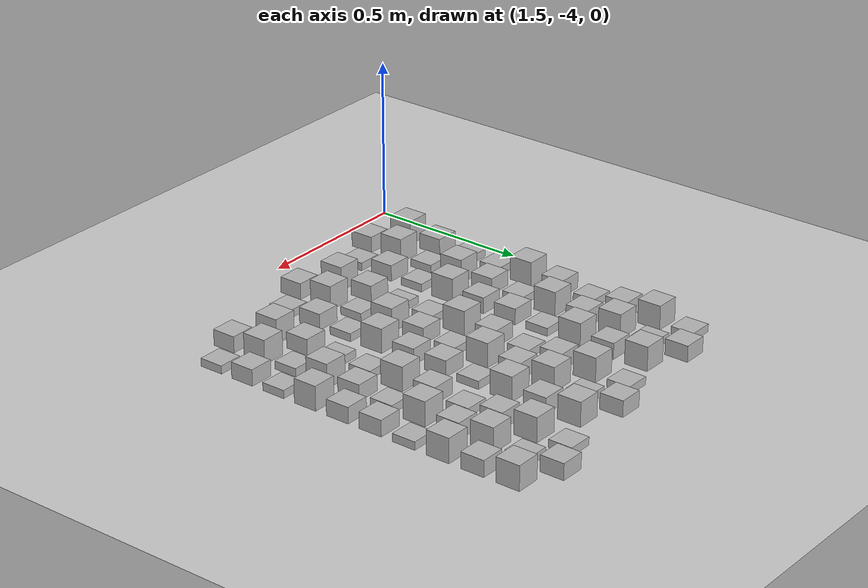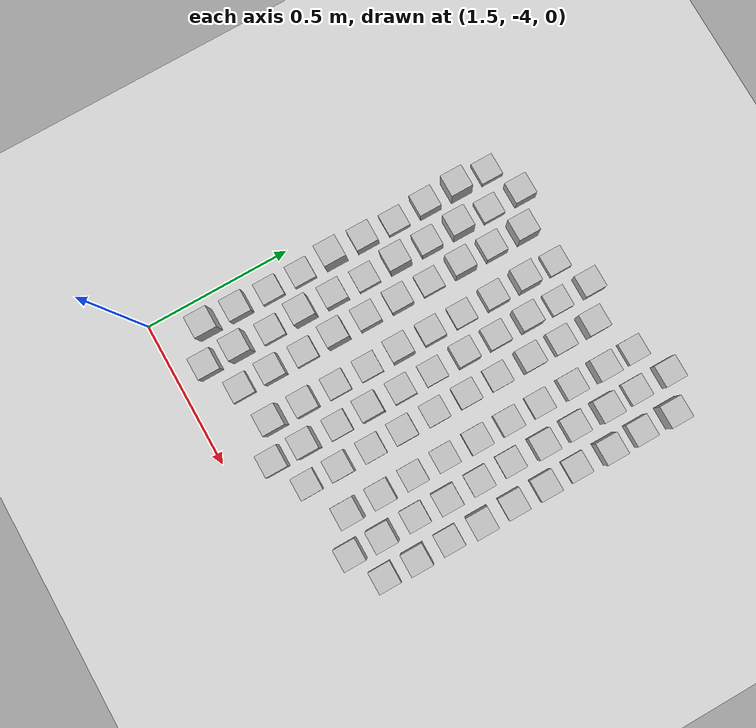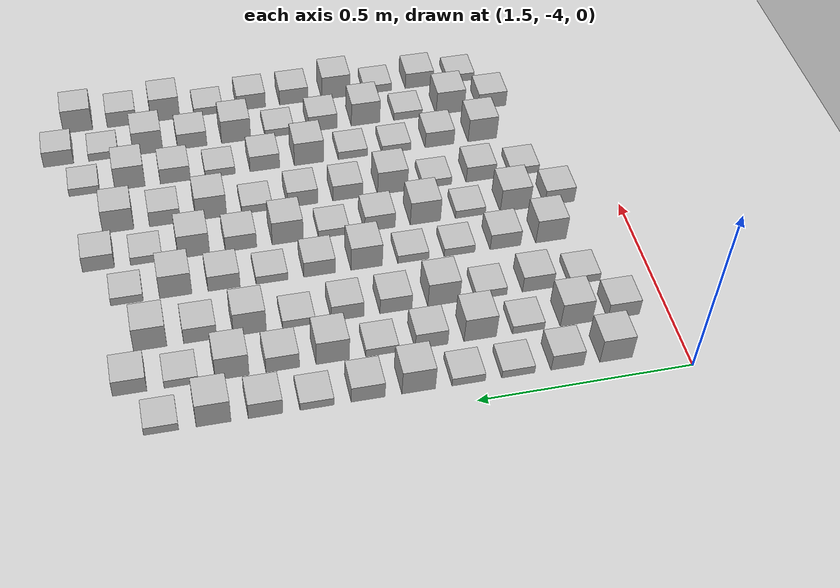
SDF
<sdf version="1.6">
 <world name="default">
  <light name="sun" type="directional">
   <pose>0 0 10 0 -0 0</pose>
   <diffuse>0.8 0.8 0.8 1</diffuse>
   <specular>0.1 0.1 0.1 1</specular>
   <attenuation>
    <range>1000</range>
    <constant>0.9</constant>
    <linear>0.01</linear>
    <quadratic>0.001</quadratic>
   </attenuation>
   <direction>-0.5 0.5 -1</direction>
  </light>
  <model name="ground_plane">
   <static>1</static>
   <link name="link">
    <collision name="collision">
     <geometry><plane><normal>0 0 1</normal><size>100 100</size></plane></geometry>
     <surface><friction><ode><mu>100</mu><mu2>50</mu2></ode></friction></surface>
    </collision>
    <visual name="visual">
     <cast_shadows>0</cast_shadows>
     <geometry><plane><normal>0 0 1</normal><size>100 100</size></plane></geometry>
     <material>
      <script><uri>file://media/materials/scripts/gazebo.material</uri><name>Gazebo/Grey</name></script>
     </material>
    </visual>
   </link>
  </model>
  <gravity>0 0 -9.8</gravity>
  <magnetic_field>6e-06 2.3e-05 -4.2e-05</magnetic_field>
  <atmosphere type="adiabatic"/>
  <physics name="default_physics" default="0" type="ode">
   <max_step_size>0.001</max_step_size>
   <real_time_factor>1</real_time_factor>
   <real_time_update_rate>1000</real_time_update_rate>
  </physics>
  <scene><ambient>0.4 0.4 0.4 1</ambient><background>0.7 0.7 0.7 1</background><shadows>1</shadows></scene>
  <spherical_coordinates>
   <surface_model>EARTH_WGS84</surface_model>
   <latitude_deg>0</latitude_deg>
   <longitude_deg>0</longitude_deg>
   <elevation>0</elevation>
   <heading_deg>0</heading_deg>
  </spherical_coordinates>
  <model name="frc2016_roughterrain">
   <static>1</static>
   <link name="link">
    <visual name="platform">
     <pose>0 0 0.08269 0 -0 0</pose>
     <geometry><box><size>1.27 0.5969 0.003175</size></box></geometry>
    </visual>
    <collision name="platform">
     <pose>0 0 0.08269 0 -0 0</pose>
     <geometry><box><size>1.27 0.5969 0.003175</size></box></geometry>
    </collision>
    <visual name="row1_block1_sm">
     <pose>0.51435 0.1143 0.09698 0 -0 0</pose>
     <geometry><box><size>0.0762 0.0762 0.0254</size></box></geometry>
    </visual>
    <collision name="row1_block1_sm">
     <pose>0.51435 0.1143 0.09698 0 -0 0</pose>
     <geometry><box><size>0.0762 0.0762 0.0254</size></box></geometry>
    </collision>
    <visual name="row1_block2_lg">
     <pose>0.40005 0.1143 0.12238 0 -0 0</pose>
     <geometry><box><size>0.0762 0.0762 0.0762</size></box></geometry>
    </visual>
    <collision name="row1_block2_lg">
     <pose>0.40005 0.1143 0.12238 0 -0 0</pose>
     <geometry><box><size>0.0762 0.0762 0.0762</size></box></geometry>
    </collision>
    <visual name="row1_block3_md">
     <pose>0.28575 0.1143 0.10968 0 -0 0</pose>
     <geometry><box><size>0.0762 0.0762 0.0508</size></box></geometry>
    </visual>
    <collision name="row1_block3_md">
     <pose>0.28575 0.1143 0.10968 0 -0 0</pose>
     <geometry><box><size>0.0762 0.0762 0.0508</size></box></geometry>
    </collision>
    <visual name="row1_block4_sm">
     <pose>0.17145 0.1143 0.09698 0 -0 0</pose>
     <geometry><box><size>0.0762 0.0762 0.0254</size></box></geometry>
    </visual>
    <collision name="row1_block4_sm">
     <pose>0.17145 0.1143 0.09698 0 -0 0</pose>
     <geometry><box><size>0.0762 0.0762 0.0254</size></box></geometry>
    </collision>
    <visual name="row1_block5_md">
     <pose>0.05715 0.1143 0.10968 0 -0 0</pose>
     <geometry><box><size>0.0762 0.0762 0.0508</size></box></geometry>
    </visual>
    <collision name="row1_block5_md">
     <pose>0.05715 0.1143 0.10968 0 -0 0</pose>
     <geometry><box><size>0.0762 0.0762 0.0508</size></box></geometry>
    </collision>
    <visual name="row1_block6_lg">
     <pose>-0.05715 0.1143 0.12238 0 -0 0</pose>
     <geometry><box><size>0.0762 0.0762 0.0762</size></box></geometry>
    </visual>
    <collision name="row1_block6_lg">
     <pose>-0.05715 0.1143 0.12238 0 -0 0</pose>
     <geometry><box><size>0.0762 0.0762 0.0762</size></box></geometry>
    </collision>
    <visual name="row1_block7_sm">
     <pose>-0.17145 0.1143 0.09698 0 -0 0</pose>
     <geometry><box><size>0.0762 0.0762 0.0254</size></box></geometry>
    </visual>
    <collision name="row1_block7_sm">
     <pose>-0.17145 0.1143 0.09698 0 -0 0</pose>
     <geometry><box><size>0.0762 0.0762 0.0254</size></box></geometry>
    </collision>
    <visual name="row1_block8_sm">
     <pose>-0.28575 0.1143 0.09698 0 -0 0</pose>
     <geometry><box><size>0.0762 0.0762 0.0254</size></box></geometry>
    </visual>
    <collision name="row1_block8_sm">
     <pose>-0.28575 0.1143 0.09698 0 -0 0</pose>
     <geometry><box><size>0.0762 0.0762 0.0254</size></box></geometry>
    </collision>
    <visual name="row1_block9_md">
     <pose>-0.40005 0.1143 0.10968 0 -0 0</pose>
     <geometry><box><size>0.0762 0.0762 0.0508</size></box></geometry>
    </visual>
    <collision name="row1_block9_md">
     <pose>-0.40005 0.1143 0.10968 0 -0 0</pose>
     <geometry><box><size>0.0762 0.0762 0.0508</size></box></geometry>
    </collision>
    <visual name="row1_block10_lg">
     <pose>-0.51435 0.1143 0.12238 0 -0 0</pose>
     <geometry><box><size>0.0762 0.0762 0.0762</size></box></geometry>
    </visual>
    <collision name="row1_block10_lg">
     <pose>-0.51435 0.1143 0.12238 0 -0 0</pose>
     <geometry><box><size>0.0762 0.0762 0.0762</size></box></geometry>
    </collision>
    <visual name="row2_block1_md">
     <pose>0.5715 0 0.10968 0 -0 0</pose>
     <geometry><box><size>0.0762 0.0762 0.0508</size></box></geometry>
    </visual>
    <collision name="row2_block1_md">
     <pose>0.5715 0 0.10968 0 -0 0</pose>
     <geometry><box><size>0.0762 0.0762 0.0508</size></box></geometry>
    </collision>
    <visual name="row2_block2_sm">
     <pose>0.4572 0 0.09698 0 -0 0</pose>
     <geometry><box><size>0.0762 0.0762 0.0254</size></box></geometry>
    </visual>
    <collision name="row2_block2_sm">
     <pose>0.4572 0 0.09698 0 -0 0</pose>
     <geometry><box><size>0.0762 0.0762 0.0254</size></box></geometry>
    </collision>
    <visual name="row2_block3_lg">
     <pose>0.3429 0 0.12238 0 -0 0</pose>
     <geometry><box><size>0.0762 0.0762 0.0762</size></box></geometry>
    </visual>
    <collision name="row2_block3_lg">
     <pose>0.3429 0 0.12238 0 -0 0</pose>
     <geometry><box><size>0.0762 0.0762 0.0762</size></box></geometry>
    </collision>
    <visual name="row2_block4_md">
     <pose>0.2286 0 0.10968 0 -0 0</pose>
     <geometry><box><size>0.0762 0.0762 0.0508</size></box></geometry>
    </visual>
    <collision name="row2_block4_md">
     <pose>0.2286 0 0.10968 0 -0 0</pose>
     <geometry><box><size>0.0762 0.0762 0.0508</size></box></geometry>
    </collision>
    <visual name="row2_block5_lg">
     <pose>0.1143 0 0.12238 0 -0 0</pose>
     <geometry><box><size>0.0762 0.0762 0.0762</size></box></geometry>
    </visual>
    <collision name="row2_block5_lg">
     <pose>0.1143 0 0.12238 0 -0 0</pose>
     <geometry><box><size>0.0762 0.0762 0.0762</size></box></geometry>
    </collision>
    <visual name="row2_block6_sm">
     <pose>0 0 0.09698 0 -0 0</pose>
     <geometry><box><size>0.0762 0.0762 0.0254</size></box></geometry>
    </visual>
    <collision name="row2_block6_sm">
     <pose>0 0 0.09698 0 -0 0</pose>
     <geometry><box><size>0.0762 0.0762 0.0254</size></box></geometry>
    </collision>
    <visual name="row2_block7_md">
     <pose>-0.1143 0 0.10968 0 -0 0</pose>
     <geometry><box><size>0.0762 0.0762 0.0508</size></box></geometry>
    </visual>
    <collision name="row2_block7_md">
     <pose>-0.1143 0 0.10968 0 -0 0</pose>
     <geometry><box><size>0.0762 0.0762 0.0508</size></box></geometry>
    </collision>
    <visual name="row2_block8_lg">
     <pose>-0.2286 0 0.12238 0 -0 0</pose>
     <geometry><box><size>0.0762 0.0762 0.0762</size></box></geometry>
    </visual>
    <collision name="row2_block8_lg">
     <pose>-0.2286 0 0.12238 0 -0 0</pose>
     <geometry><box><size>0.0762 0.0762 0.0762</size></box></geometry>
    </collision>
    <visual name="row2_block9_sm">
     <pose>-0.3429 0 0.09698 0 -0 0</pose>
     <geometry><box><size>0.0762 0.0762 0.0254</size></box></geometry>
    </visual>
    <collision name="row2_block9_sm">
     <pose>-0.3429 0 0.09698 0 -0 0</pose>
     <geometry><box><size>0.0762 0.0762 0.0254</size></box></geometry>
    </collision>
    <visual name="row2_block10_lg">
     <pose>-0.4572 0 0.12238 0 -0 0</pose>
     <geometry><box><size>0.0762 0.0762 0.0762</size></box></geometry>
    </visual>
    <collision name="row2_block10_lg">
     <pose>-0.4572 0 0.12238 0 -0 0</pose>
     <geometry><box><size>0.0762 0.0762 0.0762</size></box></geometry>
    </collision>
    <visual name="row2_block11_md">
     <pose>-0.5715 0 0.10968 0 -0 0</pose>
     <geometry><box><size>0.0762 0.0762 0.0508</size></box></geometry>
    </visual>
    <collision name="row2_block11_md">
     <pose>-0.5715 0 0.10968 0 -0 0</pose>
     <geometry><box><size>0.0762 0.0762 0.0508</size></box></geometry>
    </collision>
    <visual name="row3_block1_lg">
     <pose>0.51435 -0.1143 0.12238 0 -0 0</pose>
     <geometry><box><size>0.0762 0.0762 0.0762</size></box></geometry>
    </visual>
    <collision name="row3_block1_lg">
     <pose>0.51435 -0.1143 0.12238 0 -0 0</pose>
     <geometry><box><size>0.0762 0.0762 0.0762</size></box></geometry>
    </collision>
    <visual name="row3_block2_md">
     <pose>0.40005 -0.1143 0.10968 0 -0 0</pose>
     <geometry><box><size>0.0762 0.0762 0.0508</size></box></geometry>
    </visual>
    <collision name="row3_block2_md">
     <pose>0.40005 -0.1143 0.10968 0 -0 0</pose>
     <geometry><box><size>0.0762 0.0762 0.0508</size></box></geometry>
    </collision>
    <visual name="row3_block3_lg">
     <pose>0.28575 -0.1143 0.12238 0 -0 0</pose>
     <geometry><box><size>0.0762 0.0762 0.0762</size></box></geometry>
    </visual>
    <collision name="row3_block3_lg">
     <pose>0.28575 -0.1143 0.12238 0 -0 0</pose>
     <geometry><box><size>0.0762 0.0762 0.0762</size></box></geometry>
    </collision>
    <visual name="row3_block4_sm">
     <pose>0.17145 -0.1143 0.09698 0 -0 0</pose>
     <geometry><box><size>0.0762 0.0762 0.0254</size></box></geometry>
    </visual>
    <collision name="row3_block4_sm">
     <pose>0.17145 -0.1143 0.09698 0 -0 0</pose>
     <geometry><box><size>0.0762 0.0762 0.0254</size></box></geometry>
    </collision>
    <visual name="row3_block5_md">
     <pose>0.05715 -0.1143 0.10968 0 -0 0</pose>
     <geometry><box><size>0.0762 0.0762 0.0508</size></box></geometry>
    </visual>
    <collision name="row3_block5_md">
     <pose>0.05715 -0.1143 0.10968 0 -0 0</pose>
     <geometry><box><size>0.0762 0.0762 0.0508</size></box></geometry>
    </collision>
    <visual name="row3_block6_md">
     <pose>-0.05715 -0.1143 0.10968 0 -0 0</pose>
     <geometry><box><size>0.0762 0.0762 0.0508</size></box></geometry>
    </visual>
    <collision name="row3_block6_md">
     <pose>-0.05715 -0.1143 0.10968 0 -0 0</pose>
     <geometry><box><size>0.0762 0.0762 0.0508</size></box></geometry>
    </collision>
    <visual name="row3_block7_lg">
     <pose>-0.17145 -0.1143 0.12238 0 -0 0</pose>
     <geometry><box><size>0.0762 0.0762 0.0762</size></box></geometry>
    </visual>
    <collision name="row3_block7_lg">
     <pose>-0.17145 -0.1143 0.12238 0 -0 0</pose>
     <geometry><box><size>0.0762 0.0762 0.0762</size></box></geometry>
    </collision>
    <visual name="row3_block8_sm">
     <pose>-0.28575 -0.1143 0.09698 0 -0 0</pose>
     <geometry><box><size>0.0762 0.0762 0.0254</size></box></geometry>
    </visual>
    <collision name="row3_block8_sm">
     <pose>-0.28575 -0.1143 0.09698 0 -0 0</pose>
     <geometry><box><size>0.0762 0.0762 0.0254</size></box></geometry>
    </collision>
    <visual name="row3_block9_md">
     <pose>-0.40005 -0.1143 0.10968 0 -0 0</pose>
     <geometry><box><size>0.0762 0.0762 0.0508</size></box></geometry>
    </visual>
    <collision name="row3_block9_md">
     <pose>-0.40005 -0.1143 0.10968 0 -0 0</pose>
     <geometry><box><size>0.0762 0.0762 0.0508</size></box></geometry>
    </collision>
    <visual name="row3_block10_sm">
     <pose>-0.51435 -0.1143 0.09698 0 -0 0</pose>
     <geometry><box><size>0.0762 0.0762 0.0254</size></box></geometry>
    </visual>
    <collision name="row3_block10_sm">
     <pose>-0.51435 -0.1143 0.09698 0 -0 0</pose>
     <geometry><box><size>0.0762 0.0762 0.0254</size></box></geometry>
    </collision>
   </link>
   <pose>1.70324 -3.32243 -0.086398 0 -0 1.56747</pose>
  </model>
  <model name="test_terrian_slope_and_stairs">
   <link name="link_0">
    <pose>0 0 0 1.5708 -0 0</pose>
    <inertial>
     <mass>1</mass>
     <inertia>
      <ixx>0.166667</ixx>
      <ixy>0</ixy>
      <ixz>0</ixz>
      <iyy>0.166667</iyy>
      <iyz>0</iyz>
      <izz>0.166667</izz>
     </inertia>
    </inertial>
    <visual name="visual">
     <geometry>
      <mesh>
       <uri>/home/hitstar/catkin_ws_sim/src/simple_dog_simulation/simpleDog/meshes/Part1.STL</uri>
       <scale>1 1 1</scale>
      </mesh>
     </geometry>
     <material>
      <lighting>1</lighting>
      <script><uri>file://media/materials/scripts/gazebo.material</uri><name>Gazebo/Grey</name></script>
      <ambient>0.3 0.3 0.3 1</ambient>
      <diffuse>0.7 0.7 0.7 1</diffuse>
      <specular>0.01 0.01 0.01 1</specular>
      <emissive>0 0 0 1</emissive>
      <shader type="vertex"><normal_map>__default__</normal_map></shader>
     </material>
    </visual>
    <collision name="collision">
     <geometry>
      <mesh>
       <uri>/home/hitstar/catkin_ws_sim/src/simple_dog_simulation/simpleDog/meshes/Part1.STL</uri>
       <scale>1 1 1</scale>
      </mesh>
     </geometry>
     <surface>
      <friction>
       <ode><mu>1</mu><mu2>1</mu2><fdir1>0 0 0</fdir1><slip1>0</slip1><slip2>0</slip2></ode>
       <torsional>
        <coefficient>1</coefficient>
        <patch_radius>0</patch_radius>
        <surface_radius>0</surface_radius>
        <use_patch_radius>1</use_patch_radius>
        <ode><slip>0</slip></ode>
       </torsional>
      </friction>
      <bounce><restitution_coefficient>0</restitution_coefficient><threshold>1e+06</threshold></bounce>
      <contact>
       <collide_without_contact>0</collide_without_contact>
       <collide_without_contact_bitmask>1</collide_without_contact_bitmask>
       <collide_bitmask>1</collide_bitmask>
       <ode>
        <soft_cfm>0</soft_cfm>
        <soft_erp>0.2</soft_erp>
        <kp>1e+13</kp>
        <kd>1</kd>
        <max_vel>0.01</max_vel>
        <min_depth>0</min_depth>
       </ode>
       <bullet>
        <split_impulse>1</split_impulse>
        <split_impulse_penetration_threshold>-0.01</split_impulse_penetration_threshold>
        <soft_cfm>0</soft_cfm>
        <soft_erp>0.2</soft_erp>
        <kp>1e+13</kp>
        <kd>1</kd>
       </bullet>
      </contact>
     </surface>
    </collision>
   </link>
   <static>1</static>
   <pose>4.96985 1.42104 -0.03944 0 0 -1.55894</pose>
  </model>
  <model name="frc2016_roughterrain_clone">
   <static>1</static>
   <link name="link">
    <visual name="platform">
     <pose>0 0 0.08269 0 -0 0</pose>
     <geometry><box><size>1.27 0.5969 0.003175</size></box></geometry>
    </visual>
    <collision name="platform">
     <pose>0 0 0.08269 0 -0 0</pose>
     <geometry><box><size>1.27 0.5969 0.003175</size></box></geometry>
    </collision>
    <visual name="row1_block1_sm">
     <pose>0.51435 0.1143 0.09698 0 -0 0</pose>
     <geometry><box><size>0.0762 0.0762 0.0254</size></box></geometry>
    </visual>
    <collision name="row1_block1_sm">
     <pose>0.51435 0.1143 0.09698 0 -0 0</pose>
     <geometry><box><size>0.0762 0.0762 0.0254</size></box></geometry>
    </collision>
    <visual name="row1_block2_lg">
     <pose>0.40005 0.1143 0.12238 0 -0 0</pose>
     <geometry><box><size>0.0762 0.0762 0.0762</size></box></geometry>
    </visual>
    <collision name="row1_block2_lg">
     <pose>0.40005 0.1143 0.12238 0 -0 0</pose>
     <geometry><box><size>0.0762 0.0762 0.0762</size></box></geometry>
    </collision>
    <visual name="row1_block3_md">
     <pose>0.28575 0.1143 0.10968 0 -0 0</pose>
     <geometry><box><size>0.0762 0.0762 0.0508</size></box></geometry>
    </visual>
    <collision name="row1_block3_md">
     <pose>0.28575 0.1143 0.10968 0 -0 0</pose>
     <geometry><box><size>0.0762 0.0762 0.0508</size></box></geometry>
    </collision>
    <visual name="row1_block4_sm">
     <pose>0.17145 0.1143 0.09698 0 -0 0</pose>
     <geometry><box><size>0.0762 0.0762 0.0254</size></box></geometry>
    </visual>
    <collision name="row1_block4_sm">
     <pose>0.17145 0.1143 0.09698 0 -0 0</pose>
     <geometry><box><size>0.0762 0.0762 0.0254</size></box></geometry>
    </collision>
    <visual name="row1_block5_md">
     <pose>0.05715 0.1143 0.10968 0 -0 0</pose>
     <geometry><box><size>0.0762 0.0762 0.0508</size></box></geometry>
    </visual>
    <collision name="row1_block5_md">
     <pose>0.05715 0.1143 0.10968 0 -0 0</pose>
     <geometry><box><size>0.0762 0.0762 0.0508</size></box></geometry>
    </collision>
    <visual name="row1_block6_lg">
     <pose>-0.05715 0.1143 0.12238 0 -0 0</pose>
     <geometry><box><size>0.0762 0.0762 0.0762</size></box></geometry>
    </visual>
    <collision name="row1_block6_lg">
     <pose>-0.05715 0.1143 0.12238 0 -0 0</pose>
     <geometry><box><size>0.0762 0.0762 0.0762</size></box></geometry>
    </collision>
    <visual name="row1_block7_sm">
     <pose>-0.17145 0.1143 0.09698 0 -0 0</pose>
     <geometry><box><size>0.0762 0.0762 0.0254</size></box></geometry>
    </visual>
    <collision name="row1_block7_sm">
     <pose>-0.17145 0.1143 0.09698 0 -0 0</pose>
     <geometry><box><size>0.0762 0.0762 0.0254</size></box></geometry>
    </collision>
    <visual name="row1_block8_sm">
     <pose>-0.28575 0.1143 0.09698 0 -0 0</pose>
     <geometry><box><size>0.0762 0.0762 0.0254</size></box></geometry>
    </visual>
    <collision name="row1_block8_sm">
     <pose>-0.28575 0.1143 0.09698 0 -0 0</pose>
     <geometry><box><size>0.0762 0.0762 0.0254</size></box></geometry>
    </collision>
    <visual name="row1_block9_md">
     <pose>-0.40005 0.1143 0.10968 0 -0 0</pose>
     <geometry><box><size>0.0762 0.0762 0.0508</size></box></geometry>
    </visual>
    <collision name="row1_block9_md">
     <pose>-0.40005 0.1143 0.10968 0 -0 0</pose>
     <geometry><box><size>0.0762 0.0762 0.0508</size></box></geometry>
    </collision>
    <visual name="row1_block10_lg">
     <pose>-0.51435 0.1143 0.12238 0 -0 0</pose>
     <geometry><box><size>0.0762 0.0762 0.0762</size></box></geometry>
    </visual>
    <collision name="row1_block10_lg">
     <pose>-0.51435 0.1143 0.12238 0 -0 0</pose>
     <geometry><box><size>0.0762 0.0762 0.0762</size></box></geometry>
    </collision>
    <visual name="row2_block1_md">
     <pose>0.5715 0 0.10968 0 -0 0</pose>
     <geometry><box><size>0.0762 0.0762 0.0508</size></box></geometry>
    </visual>
    <collision name="row2_block1_md">
     <pose>0.5715 0 0.10968 0 -0 0</pose>
     <geometry><box><size>0.0762 0.0762 0.0508</size></box></geometry>
    </collision>
    <visual name="row2_block2_sm">
     <pose>0.4572 0 0.09698 0 -0 0</pose>
     <geometry><box><size>0.0762 0.0762 0.0254</size></box></geometry>
    </visual>
    <collision name="row2_block2_sm">
     <pose>0.4572 0 0.09698 0 -0 0</pose>
     <geometry><box><size>0.0762 0.0762 0.0254</size></box></geometry>
    </collision>
    <visual name="row2_block3_lg">
     <pose>0.3429 0 0.12238 0 -0 0</pose>
     <geometry><box><size>0.0762 0.0762 0.0762</size></box></geometry>
    </visual>
    <collision name="row2_block3_lg">
     <pose>0.3429 0 0.12238 0 -0 0</pose>
     <geometry><box><size>0.0762 0.0762 0.0762</size></box></geometry>
    </collision>
    <visual name="row2_block4_md">
     <pose>0.2286 0 0.10968 0 -0 0</pose>
     <geometry><box><size>0.0762 0.0762 0.0508</size></box></geometry>
    </visual>
    <collision name="row2_block4_md">
     <pose>0.2286 0 0.10968 0 -0 0</pose>
     <geometry><box><size>0.0762 0.0762 0.0508</size></box></geometry>
    </collision>
    <visual name="row2_block5_lg">
     <pose>0.1143 0 0.12238 0 -0 0</pose>
     <geometry><box><size>0.0762 0.0762 0.0762</size></box></geometry>
    </visual>
    <collision name="row2_block5_lg">
     <pose>0.1143 0 0.12238 0 -0 0</pose>
     <geometry><box><size>0.0762 0.0762 0.0762</size></box></geometry>
    </collision>
    <visual name="row2_block6_sm">
     <pose>0 0 0.09698 0 -0 0</pose>
     <geometry><box><size>0.0762 0.0762 0.0254</size></box></geometry>
    </visual>
    <collision name="row2_block6_sm">
     <pose>0 0 0.09698 0 -0 0</pose>
     <geometry><box><size>0.0762 0.0762 0.0254</size></box></geometry>
    </collision>
    <visual name="row2_block7_md">
     <pose>-0.1143 0 0.10968 0 -0 0</pose>
     <geometry><box><size>0.0762 0.0762 0.0508</size></box></geometry>
    </visual>
    <collision name="row2_block7_md">
     <pose>-0.1143 0 0.10968 0 -0 0</pose>
     <geometry><box><size>0.0762 0.0762 0.0508</size></box></geometry>
    </collision>
    <visual name="row2_block8_lg">
     <pose>-0.2286 0 0.12238 0 -0 0</pose>
     <geometry><box><size>0.0762 0.0762 0.0762</size></box></geometry>
    </visual>
    <collision name="row2_block8_lg">
     <pose>-0.2286 0 0.12238 0 -0 0</pose>
     <geometry><box><size>0.0762 0.0762 0.0762</size></box></geometry>
    </collision>
    <visual name="row2_block9_sm">
     <pose>-0.3429 0 0.09698 0 -0 0</pose>
     <geometry><box><size>0.0762 0.0762 0.0254</size></box></geometry>
    </visual>
    <collision name="row2_block9_sm">
     <pose>-0.3429 0 0.09698 0 -0 0</pose>
     <geometry><box><size>0.0762 0.0762 0.0254</size></box></geometry>
    </collision>
    <visual name="row2_block10_lg">
     <pose>-0.4572 0 0.12238 0 -0 0</pose>
     <geometry><box><size>0.0762 0.0762 0.0762</size></box></geometry>
    </visual>
    <collision name="row2_block10_lg">
     <pose>-0.4572 0 0.12238 0 -0 0</pose>
     <geometry><box><size>0.0762 0.0762 0.0762</size></box></geometry>
    </collision>
    <visual name="row2_block11_md">
     <pose>-0.5715 0 0.10968 0 -0 0</pose>
     <geometry><box><size>0.0762 0.0762 0.0508</size></box></geometry>
    </visual>
    <collision name="row2_block11_md">
     <pose>-0.5715 0 0.10968 0 -0 0</pose>
     <geometry><box><size>0.0762 0.0762 0.0508</size></box></geometry>
    </collision>
    <visual name="row3_block1_lg">
     <pose>0.51435 -0.1143 0.12238 0 -0 0</pose>
     <geometry><box><size>0.0762 0.0762 0.0762</size></box></geometry>
    </visual>
    <collision name="row3_block1_lg">
     <pose>0.51435 -0.1143 0.12238 0 -0 0</pose>
     <geometry><box><size>0.0762 0.0762 0.0762</size></box></geometry>
    </collision>
    <visual name="row3_block2_md">
     <pose>0.40005 -0.1143 0.10968 0 -0 0</pose>
     <geometry><box><size>0.0762 0.0762 0.0508</size></box></geometry>
    </visual>
    <collision name="row3_block2_md">
     <pose>0.40005 -0.1143 0.10968 0 -0 0</pose>
     <geometry><box><size>0.0762 0.0762 0.0508</size></box></geometry>
    </collision>
    <visual name="row3_block3_lg">
     <pose>0.28575 -0.1143 0.12238 0 -0 0</pose>
     <geometry><box><size>0.0762 0.0762 0.0762</size></box></geometry>
    </visual>
    <collision name="row3_block3_lg">
     <pose>0.28575 -0.1143 0.12238 0 -0 0</pose>
     <geometry><box><size>0.0762 0.0762 0.0762</size></box></geometry>
    </collision>
    <visual name="row3_block4_sm">
     <pose>0.17145 -0.1143 0.09698 0 -0 0</pose>
     <geometry><box><size>0.0762 0.0762 0.0254</size></box></geometry>
    </visual>
    <collision name="row3_block4_sm">
     <pose>0.17145 -0.1143 0.09698 0 -0 0</pose>
     <geometry><box><size>0.0762 0.0762 0.0254</size></box></geometry>
    </collision>
    <visual name="row3_block5_md">
     <pose>0.05715 -0.1143 0.10968 0 -0 0</pose>
     <geometry><box><size>0.0762 0.0762 0.0508</size></box></geometry>
    </visual>
    <collision name="row3_block5_md">
     <pose>0.05715 -0.1143 0.10968 0 -0 0</pose>
     <geometry><box><size>0.0762 0.0762 0.0508</size></box></geometry>
    </collision>
    <visual name="row3_block6_md">
     <pose>-0.05715 -0.1143 0.10968 0 -0 0</pose>
     <geometry><box><size>0.0762 0.0762 0.0508</size></box></geometry>
    </visual>
    <collision name="row3_block6_md">
     <pose>-0.05715 -0.1143 0.10968 0 -0 0</pose>
     <geometry><box><size>0.0762 0.0762 0.0508</size></box></geometry>
    </collision>
    <visual name="row3_block7_lg">
     <pose>-0.17145 -0.1143 0.12238 0 -0 0</pose>
     <geometry><box><size>0.0762 0.0762 0.0762</size></box></geometry>
    </visual>
    <collision name="row3_block7_lg">
     <pose>-0.17145 -0.1143 0.12238 0 -0 0</pose>
     <geometry><box><size>0.0762 0.0762 0.0762</size></box></geometry>
    </collision>
    <visual name="row3_block8_sm">
     <pose>-0.28575 -0.1143 0.09698 0 -0 0</pose>
     <geometry><box><size>0.0762 0.0762 0.0254</size></box></geometry>
    </visual>
    <collision name="row3_block8_sm">
     <pose>-0.28575 -0.1143 0.09698 0 -0 0</pose>
     <geometry><box><size>0.0762 0.0762 0.0254</size></box></geometry>
    </collision>
    <visual name="row3_block9_md">
     <pose>-0.40005 -0.1143 0.10968 0 -0 0</pose>
     <geometry><box><size>0.0762 0.0762 0.0508</size></box></geometry>
    </visual>
    <collision name="row3_block9_md">
     <pose>-0.40005 -0.1143 0.10968 0 -0 0</pose>
     <geometry><box><size>0.0762 0.0762 0.0508</size></box></geometry>
    </collision>
    <visual name="row3_block10_sm">
     <pose>-0.51435 -0.1143 0.09698 0 -0 0</pose>
     <geometry><box><size>0.0762 0.0762 0.0254</size></box></geometry>
    </visual>
    <collision name="row3_block10_sm">
     <pose>-0.51435 -0.1143 0.09698 0 -0 0</pose>
     <geometry><box><size>0.0762 0.0762 0.0254</size></box></geometry>
    </collision>
   </link>
   <pose>2.07302 -3.28394 -0.086398 0 -0 1.56747</pose>
  </model>
  <model name="frc2016_roughterrain_clone_0">
   <static>1</static>
   <link name="link">
    <visual name="platform">
     <pose>0 0 0.08269 0 -0 0</pose>
     <geometry><box><size>1.27 0.5969 0.003175</size></box></geometry>
    </visual>
    <collision name="platform">
     <pose>0 0 0.08269 0 -0 0</pose>
     <geometry><box><size>1.27 0.5969 0.003175</size></box></geometry>
    </collision>
    <visual name="row1_block1_sm">
     <pose>0.51435 0.1143 0.09698 0 -0 0</pose>
     <geometry><box><size>0.0762 0.0762 0.0254</size></box></geometry>
    </visual>
    <collision name="row1_block1_sm">
     <pose>0.51435 0.1143 0.09698 0 -0 0</pose>
     <geometry><box><size>0.0762 0.0762 0.0254</size></box></geometry>
    </collision>
    <visual name="row1_block2_lg">
     <pose>0.40005 0.1143 0.12238 0 -0 0</pose>
     <geometry><box><size>0.0762 0.0762 0.0762</size></box></geometry>
    </visual>
    <collision name="row1_block2_lg">
     <pose>0.40005 0.1143 0.12238 0 -0 0</pose>
     <geometry><box><size>0.0762 0.0762 0.0762</size></box></geometry>
    </collision>
    <visual name="row1_block3_md">
     <pose>0.28575 0.1143 0.10968 0 -0 0</pose>
     <geometry><box><size>0.0762 0.0762 0.0508</size></box></geometry>
    </visual>
    <collision name="row1_block3_md">
     <pose>0.28575 0.1143 0.10968 0 -0 0</pose>
     <geometry><box><size>0.0762 0.0762 0.0508</size></box></geometry>
    </collision>
    <visual name="row1_block4_sm">
     <pose>0.17145 0.1143 0.09698 0 -0 0</pose>
     <geometry><box><size>0.0762 0.0762 0.0254</size></box></geometry>
    </visual>
    <collision name="row1_block4_sm">
     <pose>0.17145 0.1143 0.09698 0 -0 0</pose>
     <geometry><box><size>0.0762 0.0762 0.0254</size></box></geometry>
    </collision>
    <visual name="row1_block5_md">
     <pose>0.05715 0.1143 0.10968 0 -0 0</pose>
     <geometry><box><size>0.0762 0.0762 0.0508</size></box></geometry>
    </visual>
    <collision name="row1_block5_md">
     <pose>0.05715 0.1143 0.10968 0 -0 0</pose>
     <geometry><box><size>0.0762 0.0762 0.0508</size></box></geometry>
    </collision>
    <visual name="row1_block6_lg">
     <pose>-0.05715 0.1143 0.12238 0 -0 0</pose>
     <geometry><box><size>0.0762 0.0762 0.0762</size></box></geometry>
    </visual>
    <collision name="row1_block6_lg">
     <pose>-0.05715 0.1143 0.12238 0 -0 0</pose>
     <geometry><box><size>0.0762 0.0762 0.0762</size></box></geometry>
    </collision>
    <visual name="row1_block7_sm">
     <pose>-0.17145 0.1143 0.09698 0 -0 0</pose>
     <geometry><box><size>0.0762 0.0762 0.0254</size></box></geometry>
    </visual>
    <collision name="row1_block7_sm">
     <pose>-0.17145 0.1143 0.09698 0 -0 0</pose>
     <geometry><box><size>0.0762 0.0762 0.0254</size></box></geometry>
    </collision>
    <visual name="row1_block8_sm">
     <pose>-0.28575 0.1143 0.09698 0 -0 0</pose>
     <geometry><box><size>0.0762 0.0762 0.0254</size></box></geometry>
    </visual>
    <collision name="row1_block8_sm">
     <pose>-0.28575 0.1143 0.09698 0 -0 0</pose>
     <geometry><box><size>0.0762 0.0762 0.0254</size></box></geometry>
    </collision>
    <visual name="row1_block9_md">
     <pose>-0.40005 0.1143 0.10968 0 -0 0</pose>
     <geometry><box><size>0.0762 0.0762 0.0508</size></box></geometry>
    </visual>
    <collision name="row1_block9_md">
     <pose>-0.40005 0.1143 0.10968 0 -0 0</pose>
     <geometry><box><size>0.0762 0.0762 0.0508</size></box></geometry>
    </collision>
    <visual name="row1_block10_lg">
     <pose>-0.51435 0.1143 0.12238 0 -0 0</pose>
     <geometry><box><size>0.0762 0.0762 0.0762</size></box></geometry>
    </visual>
    <collision name="row1_block10_lg">
     <pose>-0.51435 0.1143 0.12238 0 -0 0</pose>
     <geometry><box><size>0.0762 0.0762 0.0762</size></box></geometry>
    </collision>
    <visual name="row2_block1_md">
     <pose>0.5715 0 0.10968 0 -0 0</pose>
     <geometry><box><size>0.0762 0.0762 0.0508</size></box></geometry>
    </visual>
    <collision name="row2_block1_md">
     <pose>0.5715 0 0.10968 0 -0 0</pose>
     <geometry><box><size>0.0762 0.0762 0.0508</size></box></geometry>
    </collision>
    <visual name="row2_block2_sm">
     <pose>0.4572 0 0.09698 0 -0 0</pose>
     <geometry><box><size>0.0762 0.0762 0.0254</size></box></geometry>
    </visual>
    <collision name="row2_block2_sm">
     <pose>0.4572 0 0.09698 0 -0 0</pose>
     <geometry><box><size>0.0762 0.0762 0.0254</size></box></geometry>
    </collision>
    <visual name="row2_block3_lg">
     <pose>0.3429 0 0.12238 0 -0 0</pose>
     <geometry><box><size>0.0762 0.0762 0.0762</size></box></geometry>
    </visual>
    <collision name="row2_block3_lg">
     <pose>0.3429 0 0.12238 0 -0 0</pose>
     <geometry><box><size>0.0762 0.0762 0.0762</size></box></geometry>
    </collision>
    <visual name="row2_block4_md">
     <pose>0.2286 0 0.10968 0 -0 0</pose>
     <geometry><box><size>0.0762 0.0762 0.0508</size></box></geometry>
    </visual>
    <collision name="row2_block4_md">
     <pose>0.2286 0 0.10968 0 -0 0</pose>
     <geometry><box><size>0.0762 0.0762 0.0508</size></box></geometry>
    </collision>
    <visual name="row2_block5_lg">
     <pose>0.1143 0 0.12238 0 -0 0</pose>
     <geometry><box><size>0.0762 0.0762 0.0762</size></box></geometry>
    </visual>
    <collision name="row2_block5_lg">
     <pose>0.1143 0 0.12238 0 -0 0</pose>
     <geometry><box><size>0.0762 0.0762 0.0762</size></box></geometry>
    </collision>
    <visual name="row2_block6_sm">
     <pose>0 0 0.09698 0 -0 0</pose>
     <geometry><box><size>0.0762 0.0762 0.0254</size></box></geometry>
    </visual>
    <collision name="row2_block6_sm">
     <pose>0 0 0.09698 0 -0 0</pose>
     <geometry><box><size>0.0762 0.0762 0.0254</size></box></geometry>
    </collision>
    <visual name="row2_block7_md">
     <pose>-0.1143 0 0.10968 0 -0 0</pose>
     <geometry><box><size>0.0762 0.0762 0.0508</size></box></geometry>
    </visual>
    <collision name="row2_block7_md">
     <pose>-0.1143 0 0.10968 0 -0 0</pose>
     <geometry><box><size>0.0762 0.0762 0.0508</size></box></geometry>
    </collision>
    <visual name="row2_block8_lg">
     <pose>-0.2286 0 0.12238 0 -0 0</pose>
     <geometry><box><size>0.0762 0.0762 0.0762</size></box></geometry>
    </visual>
    <collision name="row2_block8_lg">
     <pose>-0.2286 0 0.12238 0 -0 0</pose>
     <geometry><box><size>0.0762 0.0762 0.0762</size></box></geometry>
    </collision>
    <visual name="row2_block9_sm">
     <pose>-0.3429 0 0.09698 0 -0 0</pose>
     <geometry><box><size>0.0762 0.0762 0.0254</size></box></geometry>
    </visual>
    <collision name="row2_block9_sm">
     <pose>-0.3429 0 0.09698 0 -0 0</pose>
     <geometry><box><size>0.0762 0.0762 0.0254</size></box></geometry>
    </collision>
    <visual name="row2_block10_lg">
     <pose>-0.4572 0 0.12238 0 -0 0</pose>
     <geometry><box><size>0.0762 0.0762 0.0762</size></box></geometry>
    </visual>
    <collision name="row2_block10_lg">
     <pose>-0.4572 0 0.12238 0 -0 0</pose>
     <geometry><box><size>0.0762 0.0762 0.0762</size></box></geometry>
    </collision>
    <visual name="row2_block11_md">
     <pose>-0.5715 0 0.10968 0 -0 0</pose>
     <geometry><box><size>0.0762 0.0762 0.0508</size></box></geometry>
    </visual>
    <collision name="row2_block11_md">
     <pose>-0.5715 0 0.10968 0 -0 0</pose>
     <geometry><box><size>0.0762 0.0762 0.0508</size></box></geometry>
    </collision>
    <visual name="row3_block1_lg">
     <pose>0.51435 -0.1143 0.12238 0 -0 0</pose>
     <geometry><box><size>0.0762 0.0762 0.0762</size></box></geometry>
    </visual>
    <collision name="row3_block1_lg">
     <pose>0.51435 -0.1143 0.12238 0 -0 0</pose>
     <geometry><box><size>0.0762 0.0762 0.0762</size></box></geometry>
    </collision>
    <visual name="row3_block2_md">
     <pose>0.40005 -0.1143 0.10968 0 -0 0</pose>
     <geometry><box><size>0.0762 0.0762 0.0508</size></box></geometry>
    </visual>
    <collision name="row3_block2_md">
     <pose>0.40005 -0.1143 0.10968 0 -0 0</pose>
     <geometry><box><size>0.0762 0.0762 0.0508</size></box></geometry>
    </collision>
    <visual name="row3_block3_lg">
     <pose>0.28575 -0.1143 0.12238 0 -0 0</pose>
     <geometry><box><size>0.0762 0.0762 0.0762</size></box></geometry>
    </visual>
    <collision name="row3_block3_lg">
     <pose>0.28575 -0.1143 0.12238 0 -0 0</pose>
     <geometry><box><size>0.0762 0.0762 0.0762</size></box></geometry>
    </collision>
    <visual name="row3_block4_sm">
     <pose>0.17145 -0.1143 0.09698 0 -0 0</pose>
     <geometry><box><size>0.0762 0.0762 0.0254</size></box></geometry>
    </visual>
    <collision name="row3_block4_sm">
     <pose>0.17145 -0.1143 0.09698 0 -0 0</pose>
     <geometry><box><size>0.0762 0.0762 0.0254</size></box></geometry>
    </collision>
    <visual name="row3_block5_md">
     <pose>0.05715 -0.1143 0.10968 0 -0 0</pose>
     <geometry><box><size>0.0762 0.0762 0.0508</size></box></geometry>
    </visual>
    <collision name="row3_block5_md">
     <pose>0.05715 -0.1143 0.10968 0 -0 0</pose>
     <geometry><box><size>0.0762 0.0762 0.0508</size></box></geometry>
    </collision>
    <visual name="row3_block6_md">
     <pose>-0.05715 -0.1143 0.10968 0 -0 0</pose>
     <geometry><box><size>0.0762 0.0762 0.0508</size></box></geometry>
    </visual>
    <collision name="row3_block6_md">
     <pose>-0.05715 -0.1143 0.10968 0 -0 0</pose>
     <geometry><box><size>0.0762 0.0762 0.0508</size></box></geometry>
    </collision>
    <visual name="row3_block7_lg">
     <pose>-0.17145 -0.1143 0.12238 0 -0 0</pose>
     <geometry><box><size>0.0762 0.0762 0.0762</size></box></geometry>
    </visual>
    <collision name="row3_block7_lg">
     <pose>-0.17145 -0.1143 0.12238 0 -0 0</pose>
     <geometry><box><size>0.0762 0.0762 0.0762</size></box></geometry>
    </collision>
    <visual name="row3_block8_sm">
     <pose>-0.28575 -0.1143 0.09698 0 -0 0</pose>
     <geometry><box><size>0.0762 0.0762 0.0254</size></box></geometry>
    </visual>
    <collision name="row3_block8_sm">
     <pose>-0.28575 -0.1143 0.09698 0 -0 0</pose>
     <geometry><box><size>0.0762 0.0762 0.0254</size></box></geometry>
    </collision>
    <visual name="row3_block9_md">
     <pose>-0.40005 -0.1143 0.10968 0 -0 0</pose>
     <geometry><box><size>0.0762 0.0762 0.0508</size></box></geometry>
    </visual>
    <collision name="row3_block9_md">
     <pose>-0.40005 -0.1143 0.10968 0 -0 0</pose>
     <geometry><box><size>0.0762 0.0762 0.0508</size></box></geometry>
    </collision>
    <visual name="row3_block10_sm">
     <pose>-0.51435 -0.1143 0.09698 0 -0 0</pose>
     <geometry><box><size>0.0762 0.0762 0.0254</size></box></geometry>
    </visual>
    <collision name="row3_block10_sm">
     <pose>-0.51435 -0.1143 0.09698 0 -0 0</pose>
     <geometry><box><size>0.0762 0.0762 0.0254</size></box></geometry>
    </collision>
   </link>
   <pose>2.4407 -3.2123 -0.086398 0 -0 1.56747</pose>
  </model>
 </world>
</sdf>
